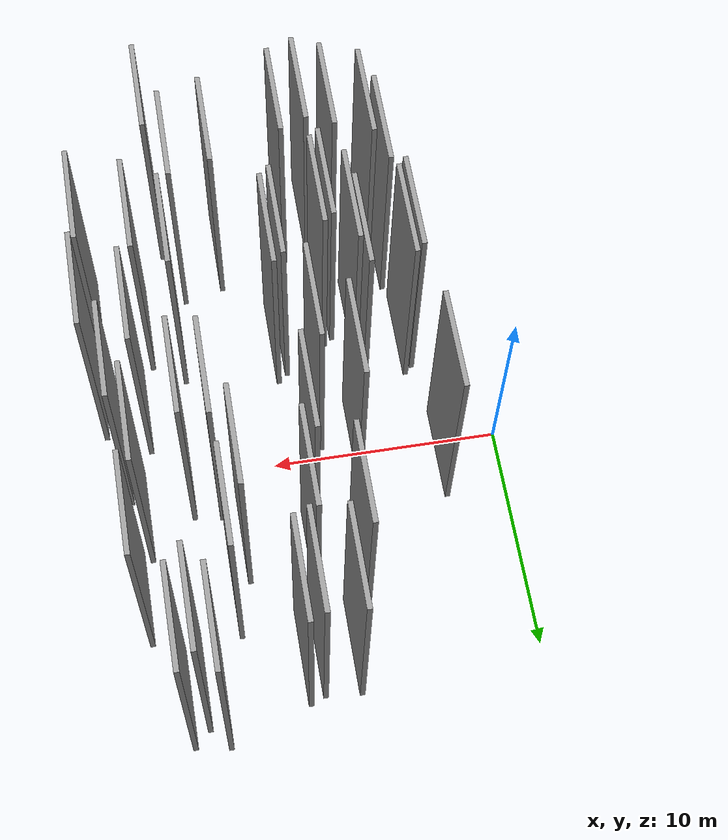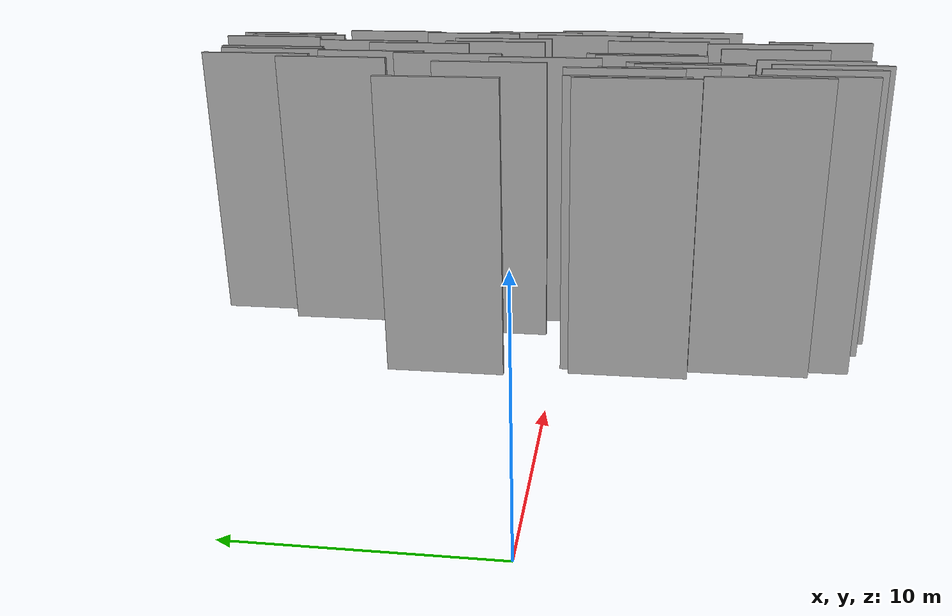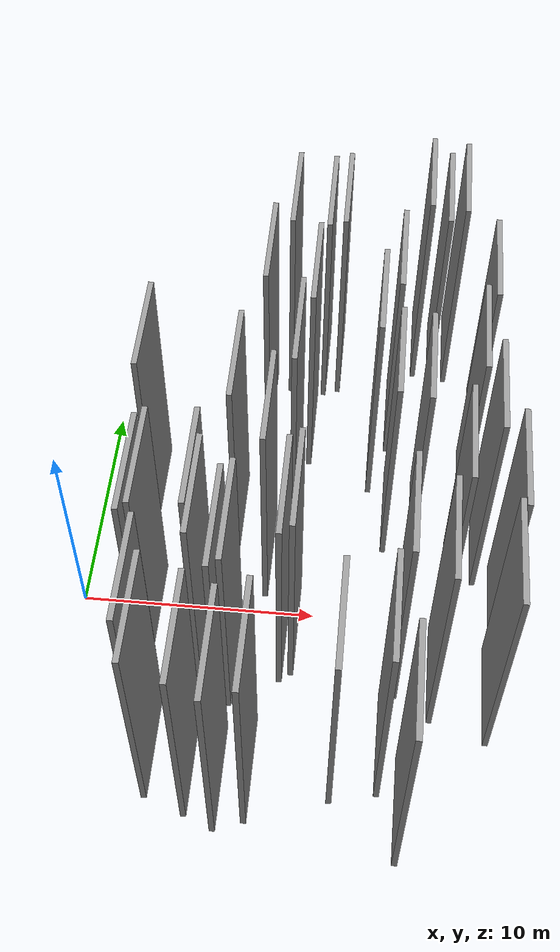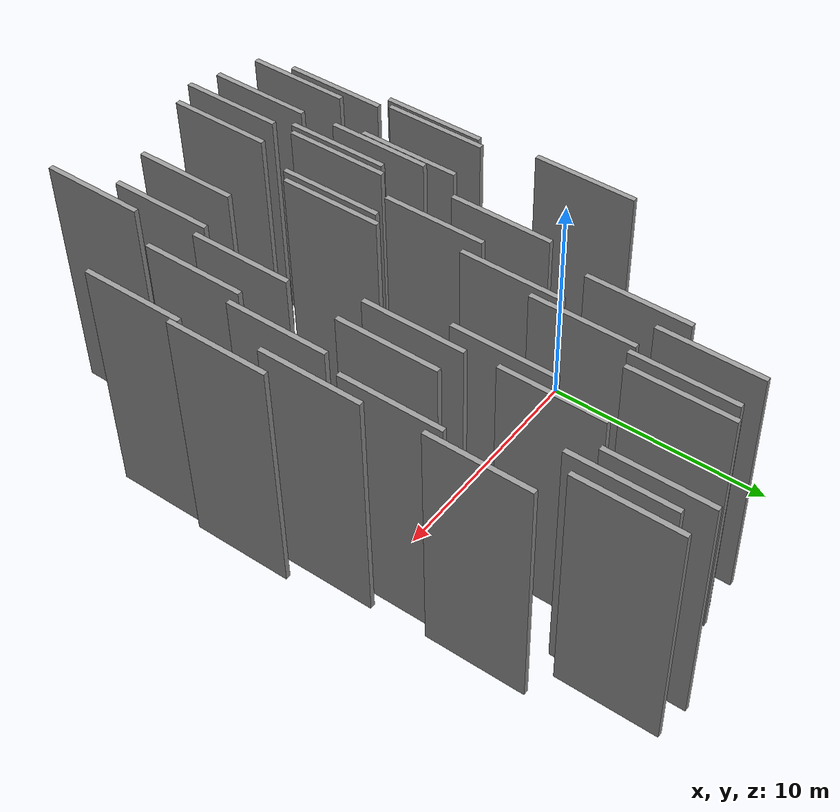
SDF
<sdf version="1.6">
 <world name="default">
  <scene>
   <sky><clouds><speed>12</speed></clouds></sky>
   <ambient>0.4 0.4 0.4 1</ambient>
   <background>0.7 0.7 0.7 1</background>
   <shadows>1</shadows>
  </scene>
  <gravity>0 0 -9.8066</gravity>
  <magnetic_field>6e-06 2.3e-05 -4.2e-05</magnetic_field>
  <physics default="0" name="default_physics" type="ode">
   <ode>
    <solver>
     <type>quick</type>
     <iters>10</iters>
     <sor>1.0</sor>
     <use_dynamic_moi_rescaling>0</use_dynamic_moi_rescaling>
    </solver>
    <constraints>
     <cfm>0</cfm>
     <erp>0.2</erp>
     <contact_max_correcting_vel>100</contact_max_correcting_vel>
     <contact_surface_layer>0.001</contact_surface_layer>
    </constraints>
   </ode>
   <max_step_size>0.004</max_step_size>
   <real_time_factor>1</real_time_factor>
   <real_time_update_rate>250</real_time_update_rate>
  </physics>
  <light name="sun" type="directional">
   <pose>0 0 10 0 0 0</pose>
   <diffuse>0.8 0.8 0.8 1</diffuse>
   <specular>0.2 0.2 0.2 1</specular>
   <attenuation>
    <range>1000</range>
    <constant>0.9</constant>
    <linear>0.01</linear>
    <quadratic>0.001</quadratic>
   </attenuation>
   <direction>-0.5 0.1 -0.9</direction>
  </light>
  <model name="grey_wall_1">
   <static>1</static>
   <pose>13.7882 2.1451 5.0 0.000000 0.000000 1.570796</pose>
   <link name="link">
    <pose>0 0 5.00 0 0 0</pose>
    <collision name="collision"><geometry><box><size>4.00 0.2 10.00</size></box></geometry></collision>
    <visual name="visual">
     <cast_shadows>0</cast_shadows>
     <geometry><box><size>4.00 0.2 10.00</size></box></geometry>
     <material>
      <script>
       <uri>model://grey_wall/materials/scripts</uri>
       <uri>model://grey_wall/materials/textures</uri>
       <name>vrc/grey_wall</name>
      </script>
     </material>
    </visual>
   </link>
  </model>
  <model name="grey_wall_2">
   <static>1</static>
   <pose>15.2211 -1.1042 5.0 0.000000 0.000000 1.570796</pose>
   <link name="link">
    <pose>0 0 5.00 0 0 0</pose>
    <collision name="collision"><geometry><box><size>4.00 0.2 10.00</size></box></geometry></collision>
    <visual name="visual">
     <cast_shadows>0</cast_shadows>
     <geometry><box><size>4.00 0.2 10.00</size></box></geometry>
     <material>
      <script>
       <uri>model://grey_wall/materials/scripts</uri>
       <uri>model://grey_wall/materials/textures</uri>
       <name>vrc/grey_wall</name>
      </script>
     </material>
    </visual>
   </link>
  </model>
  <model name="grey_wall_3">
   <static>1</static>
   <pose>16.7750 -5.7609 5.0 0.000000 0.000000 1.570796</pose>
   <link name="link">
    <pose>0 0 5.00 0 0 0</pose>
    <collision name="collision"><geometry><box><size>4.00 0.2 10.00</size></box></geometry></collision>
    <visual name="visual">
     <cast_shadows>0</cast_shadows>
     <geometry><box><size>4.00 0.2 10.00</size></box></geometry>
     <material>
      <script>
       <uri>model://grey_wall/materials/scripts</uri>
       <uri>model://grey_wall/materials/textures</uri>
       <name>vrc/grey_wall</name>
      </script>
     </material>
    </visual>
   </link>
  </model>
  <model name="grey_wall_4">
   <static>1</static>
   <pose>12.6694 2.3219 5.0 0.000000 0.000000 1.570796</pose>
   <link name="link">
    <pose>0 0 5.00 0 0 0</pose>
    <collision name="collision"><geometry><box><size>4.00 0.2 10.00</size></box></geometry></collision>
    <visual name="visual">
     <cast_shadows>0</cast_shadows>
     <geometry><box><size>4.00 0.2 10.00</size></box></geometry>
     <material>
      <script>
       <uri>model://grey_wall/materials/scripts</uri>
       <uri>model://grey_wall/materials/textures</uri>
       <name>vrc/grey_wall</name>
      </script>
     </material>
    </visual>
   </link>
  </model>
  <model name="grey_wall_5">
   <static>1</static>
   <pose>6.9106 -5.2990 5.0 0.000000 0.000000 1.570796</pose>
   <link name="link">
    <pose>0 0 5.00 0 0 0</pose>
    <collision name="collision"><geometry><box><size>4.00 0.2 10.00</size></box></geometry></collision>
    <visual name="visual">
     <cast_shadows>0</cast_shadows>
     <geometry><box><size>4.00 0.2 10.00</size></box></geometry>
     <material>
      <script>
       <uri>model://grey_wall/materials/scripts</uri>
       <uri>model://grey_wall/materials/textures</uri>
       <name>vrc/grey_wall</name>
      </script>
     </material>
    </visual>
   </link>
  </model>
  <model name="grey_wall_6">
   <static>1</static>
   <pose>12.5727 7.4707 5.0 0.000000 0.000000 1.570796</pose>
   <link name="link">
    <pose>0 0 5.00 0 0 0</pose>
    <collision name="collision"><geometry><box><size>4.00 0.2 10.00</size></box></geometry></collision>
    <visual name="visual">
     <cast_shadows>0</cast_shadows>
     <geometry><box><size>4.00 0.2 10.00</size></box></geometry>
     <material>
      <script>
       <uri>model://grey_wall/materials/scripts</uri>
       <uri>model://grey_wall/materials/textures</uri>
       <name>vrc/grey_wall</name>
      </script>
     </material>
    </visual>
   </link>
  </model>
  <model name="grey_wall_7">
   <static>1</static>
   <pose>4.0674 -3.1351 5.0 0.000000 0.000000 1.570796</pose>
   <link name="link">
    <pose>0 0 5.00 0 0 0</pose>
    <collision name="collision"><geometry><box><size>4.00 0.2 10.00</size></box></geometry></collision>
    <visual name="visual">
     <cast_shadows>0</cast_shadows>
     <geometry><box><size>4.00 0.2 10.00</size></box></geometry>
     <material>
      <script>
       <uri>model://grey_wall/materials/scripts</uri>
       <uri>model://grey_wall/materials/textures</uri>
       <name>vrc/grey_wall</name>
      </script>
     </material>
    </visual>
   </link>
  </model>
  <model name="grey_wall_8">
   <static>1</static>
   <pose>14.2873 10.9999 5.0 0.000000 0.000000 1.570796</pose>
   <link name="link">
    <pose>0 0 5.00 0 0 0</pose>
    <collision name="collision"><geometry><box><size>4.00 0.2 10.00</size></box></geometry></collision>
    <visual name="visual">
     <cast_shadows>0</cast_shadows>
     <geometry><box><size>4.00 0.2 10.00</size></box></geometry>
     <material>
      <script>
       <uri>model://grey_wall/materials/scripts</uri>
       <uri>model://grey_wall/materials/textures</uri>
       <name>vrc/grey_wall</name>
      </script>
     </material>
    </visual>
   </link>
  </model>
  <model name="grey_wall_9">
   <static>1</static>
   <pose>9.0641 -3.8773 5.0 0.000000 0.000000 1.570796</pose>
   <link name="link">
    <pose>0 0 5.00 0 0 0</pose>
    <collision name="collision"><geometry><box><size>4.00 0.2 10.00</size></box></geometry></collision>
    <visual name="visual">
     <cast_shadows>0</cast_shadows>
     <geometry><box><size>4.00 0.2 10.00</size></box></geometry>
     <material>
      <script>
       <uri>model://grey_wall/materials/scripts</uri>
       <uri>model://grey_wall/materials/textures</uri>
       <name>vrc/grey_wall</name>
      </script>
     </material>
    </visual>
   </link>
  </model>
  <model name="grey_wall_10">
   <static>1</static>
   <pose>9.3653 6.4794 5.0 0.000000 0.000000 1.570796</pose>
   <link name="link">
    <pose>0 0 5.00 0 0 0</pose>
    <collision name="collision"><geometry><box><size>4.00 0.2 10.00</size></box></geometry></collision>
    <visual name="visual">
     <cast_shadows>0</cast_shadows>
     <geometry><box><size>4.00 0.2 10.00</size></box></geometry>
     <material>
      <script>
       <uri>model://grey_wall/materials/scripts</uri>
       <uri>model://grey_wall/materials/textures</uri>
       <name>vrc/grey_wall</name>
      </script>
     </material>
    </visual>
   </link>
  </model>
  <model name="grey_wall_11">
   <static>1</static>
   <pose>13.5798 11.8175 5.0 0.000000 0.000000 1.570796</pose>
   <link name="link">
    <pose>0 0 5.00 0 0 0</pose>
    <collision name="collision"><geometry><box><size>4.00 0.2 10.00</size></box></geometry></collision>
    <visual name="visual">
     <cast_shadows>0</cast_shadows>
     <geometry><box><size>4.00 0.2 10.00</size></box></geometry>
     <material>
      <script>
       <uri>model://grey_wall/materials/scripts</uri>
       <uri>model://grey_wall/materials/textures</uri>
       <name>vrc/grey_wall</name>
      </script>
     </material>
    </visual>
   </link>
  </model>
  <model name="grey_wall_12">
   <static>1</static>
   <pose>5.8430 -2.9900 5.0 0.000000 0.000000 1.570796</pose>
   <link name="link">
    <pose>0 0 5.00 0 0 0</pose>
    <collision name="collision"><geometry><box><size>4.00 0.2 10.00</size></box></geometry></collision>
    <visual name="visual">
     <cast_shadows>0</cast_shadows>
     <geometry><box><size>4.00 0.2 10.00</size></box></geometry>
     <material>
      <script>
       <uri>model://grey_wall/materials/scripts</uri>
       <uri>model://grey_wall/materials/textures</uri>
       <name>vrc/grey_wall</name>
      </script>
     </material>
    </visual>
   </link>
  </model>
  <model name="grey_wall_13">
   <static>1</static>
   <pose>12.9214 -8.0760 5.0 0.000000 0.000000 1.570796</pose>
   <link name="link">
    <pose>0 0 5.00 0 0 0</pose>
    <collision name="collision"><geometry><box><size>4.00 0.2 10.00</size></box></geometry></collision>
    <visual name="visual">
     <cast_shadows>0</cast_shadows>
     <geometry><box><size>4.00 0.2 10.00</size></box></geometry>
     <material>
      <script>
       <uri>model://grey_wall/materials/scripts</uri>
       <uri>model://grey_wall/materials/textures</uri>
       <name>vrc/grey_wall</name>
      </script>
     </material>
    </visual>
   </link>
  </model>
  <model name="grey_wall_14">
   <static>1</static>
   <pose>7.5355 7.4163 5.0 0.000000 0.000000 1.570796</pose>
   <link name="link">
    <pose>0 0 5.00 0 0 0</pose>
    <collision name="collision"><geometry><box><size>4.00 0.2 10.00</size></box></geometry></collision>
    <visual name="visual">
     <cast_shadows>0</cast_shadows>
     <geometry><box><size>4.00 0.2 10.00</size></box></geometry>
     <material>
      <script>
       <uri>model://grey_wall/materials/scripts</uri>
       <uri>model://grey_wall/materials/textures</uri>
       <name>vrc/grey_wall</name>
      </script>
     </material>
    </visual>
   </link>
  </model>
  <model name="grey_wall_15">
   <static>1</static>
   <pose>6.0654 -4.1187 5.0 0.000000 0.000000 1.570796</pose>
   <link name="link">
    <pose>0 0 5.00 0 0 0</pose>
    <collision name="collision"><geometry><box><size>4.00 0.2 10.00</size></box></geometry></collision>
    <visual name="visual">
     <cast_shadows>0</cast_shadows>
     <geometry><box><size>4.00 0.2 10.00</size></box></geometry>
     <material>
      <script>
       <uri>model://grey_wall/materials/scripts</uri>
       <uri>model://grey_wall/materials/textures</uri>
       <name>vrc/grey_wall</name>
      </script>
     </material>
    </visual>
   </link>
  </model>
  <model name="grey_wall_16">
   <static>1</static>
   <pose>9.4680 -3.5441 5.0 0.000000 0.000000 1.570796</pose>
   <link name="link">
    <pose>0 0 5.00 0 0 0</pose>
    <collision name="collision"><geometry><box><size>4.00 0.2 10.00</size></box></geometry></collision>
    <visual name="visual">
     <cast_shadows>0</cast_shadows>
     <geometry><box><size>4.00 0.2 10.00</size></box></geometry>
     <material>
      <script>
       <uri>model://grey_wall/materials/scripts</uri>
       <uri>model://grey_wall/materials/textures</uri>
       <name>vrc/grey_wall</name>
      </script>
     </material>
    </visual>
   </link>
  </model>
  <model name="grey_wall_17">
   <static>1</static>
   <pose>6.8388 1.6233 5.0 0.000000 0.000000 1.570796</pose>
   <link name="link">
    <pose>0 0 5.00 0 0 0</pose>
    <collision name="collision"><geometry><box><size>4.00 0.2 10.00</size></box></geometry></collision>
    <visual name="visual">
     <cast_shadows>0</cast_shadows>
     <geometry><box><size>4.00 0.2 10.00</size></box></geometry>
     <material>
      <script>
       <uri>model://grey_wall/materials/scripts</uri>
       <uri>model://grey_wall/materials/textures</uri>
       <name>vrc/grey_wall</name>
      </script>
     </material>
    </visual>
   </link>
  </model>
  <model name="grey_wall_18">
   <static>1</static>
   <pose>3.3852 2.7292 5.0 0.000000 0.000000 1.570796</pose>
   <link name="link">
    <pose>0 0 5.00 0 0 0</pose>
    <collision name="collision"><geometry><box><size>4.00 0.2 10.00</size></box></geometry></collision>
    <visual name="visual">
     <cast_shadows>0</cast_shadows>
     <geometry><box><size>4.00 0.2 10.00</size></box></geometry>
     <material>
      <script>
       <uri>model://grey_wall/materials/scripts</uri>
       <uri>model://grey_wall/materials/textures</uri>
       <name>vrc/grey_wall</name>
      </script>
     </material>
    </visual>
   </link>
  </model>
  <model name="grey_wall_19">
   <static>1</static>
   <pose>8.9306 3.4871 5.0 0.000000 0.000000 1.570796</pose>
   <link name="link">
    <pose>0 0 5.00 0 0 0</pose>
    <collision name="collision"><geometry><box><size>4.00 0.2 10.00</size></box></geometry></collision>
    <visual name="visual">
     <cast_shadows>0</cast_shadows>
     <geometry><box><size>4.00 0.2 10.00</size></box></geometry>
     <material>
      <script>
       <uri>model://grey_wall/materials/scripts</uri>
       <uri>model://grey_wall/materials/textures</uri>
       <name>vrc/grey_wall</name>
      </script>
     </material>
    </visual>
   </link>
  </model>
  <model name="grey_wall_20">
   <static>1</static>
   <pose>7.2857 -5.0212 5.0 0.000000 0.000000 1.570796</pose>
   <link name="link">
    <pose>0 0 5.00 0 0 0</pose>
    <collision name="collision"><geometry><box><size>4.00 0.2 10.00</size></box></geometry></collision>
    <visual name="visual">
     <cast_shadows>0</cast_shadows>
     <geometry><box><size>4.00 0.2 10.00</size></box></geometry>
     <material>
      <script>
       <uri>model://grey_wall/materials/scripts</uri>
       <uri>model://grey_wall/materials/textures</uri>
       <name>vrc/grey_wall</name>
      </script>
     </material>
    </visual>
   </link>
  </model>
  <model name="grey_wall_21">
   <static>1</static>
   <pose>4.7145 -8.8698 5.0 0.000000 0.000000 1.570796</pose>
   <link name="link">
    <pose>0 0 5.00 0 0 0</pose>
    <collision name="collision"><geometry><box><size>4.00 0.2 10.00</size></box></geometry></collision>
    <visual name="visual">
     <cast_shadows>0</cast_shadows>
     <geometry><box><size>4.00 0.2 10.00</size></box></geometry>
     <material>
      <script>
       <uri>model://grey_wall/materials/scripts</uri>
       <uri>model://grey_wall/materials/textures</uri>
       <name>vrc/grey_wall</name>
      </script>
     </material>
    </visual>
   </link>
  </model>
  <model name="grey_wall_22">
   <static>1</static>
   <pose>6.2030 -9.4338 5.0 0.000000 0.000000 1.570796</pose>
   <link name="link">
    <pose>0 0 5.00 0 0 0</pose>
    <collision name="collision"><geometry><box><size>4.00 0.2 10.00</size></box></geometry></collision>
    <visual name="visual">
     <cast_shadows>0</cast_shadows>
     <geometry><box><size>4.00 0.2 10.00</size></box></geometry>
     <material>
      <script>
       <uri>model://grey_wall/materials/scripts</uri>
       <uri>model://grey_wall/materials/textures</uri>
       <name>vrc/grey_wall</name>
      </script>
     </material>
    </visual>
   </link>
  </model>
  <model name="grey_wall_23">
   <static>1</static>
   <pose>4.3025 -7.4743 5.0 0.000000 0.000000 1.570796</pose>
   <link name="link">
    <pose>0 0 5.00 0 0 0</pose>
    <collision name="collision"><geometry><box><size>4.00 0.2 10.00</size></box></geometry></collision>
    <visual name="visual">
     <cast_shadows>0</cast_shadows>
     <geometry><box><size>4.00 0.2 10.00</size></box></geometry>
     <material>
      <script>
       <uri>model://grey_wall/materials/scripts</uri>
       <uri>model://grey_wall/materials/textures</uri>
       <name>vrc/grey_wall</name>
      </script>
     </material>
    </visual>
   </link>
  </model>
  <model name="grey_wall_24">
   <static>1</static>
   <pose>10.2997 10.6036 5.0 0.000000 0.000000 1.570796</pose>
   <link name="link">
    <pose>0 0 5.00 0 0 0</pose>
    <collision name="collision"><geometry><box><size>4.00 0.2 10.00</size></box></geometry></collision>
    <visual name="visual">
     <cast_shadows>0</cast_shadows>
     <geometry><box><size>4.00 0.2 10.00</size></box></geometry>
     <material>
      <script>
       <uri>model://grey_wall/materials/scripts</uri>
       <uri>model://grey_wall/materials/textures</uri>
       <name>vrc/grey_wall</name>
      </script>
     </material>
    </visual>
   </link>
  </model>
  <model name="grey_wall_25">
   <static>1</static>
   <pose>11.9250 5.2454 5.0 0.000000 0.000000 1.570796</pose>
   <link name="link">
    <pose>0 0 5.00 0 0 0</pose>
    <collision name="collision"><geometry><box><size>4.00 0.2 10.00</size></box></geometry></collision>
    <visual name="visual">
     <cast_shadows>0</cast_shadows>
     <geometry><box><size>4.00 0.2 10.00</size></box></geometry>
     <material>
      <script>
       <uri>model://grey_wall/materials/scripts</uri>
       <uri>model://grey_wall/materials/textures</uri>
       <name>vrc/grey_wall</name>
      </script>
     </material>
    </visual>
   </link>
  </model>
  <model name="grey_wall_26">
   <static>1</static>
   <pose>16.1038 7.2511 5.0 0.000000 0.000000 1.570796</pose>
   <link name="link">
    <pose>0 0 5.00 0 0 0</pose>
    <collision name="collision"><geometry><box><size>4.00 0.2 10.00</size></box></geometry></collision>
    <visual name="visual">
     <cast_shadows>0</cast_shadows>
     <geometry><box><size>4.00 0.2 10.00</size></box></geometry>
     <material>
      <script>
       <uri>model://grey_wall/materials/scripts</uri>
       <uri>model://grey_wall/materials/textures</uri>
       <name>vrc/grey_wall</name>
      </script>
     </material>
    </visual>
   </link>
  </model>
  <model name="grey_wall_27">
   <static>1</static>
   <pose>13.6629 -10.5179 5.0 0.000000 0.000000 1.570796</pose>
   <link name="link">
    <pose>0 0 5.00 0 0 0</pose>
    <collision name="collision"><geometry><box><size>4.00 0.2 10.00</size></box></geometry></collision>
    <visual name="visual">
     <cast_shadows>0</cast_shadows>
     <geometry><box><size>4.00 0.2 10.00</size></box></geometry>
     <material>
      <script>
       <uri>model://grey_wall/materials/scripts</uri>
       <uri>model://grey_wall/materials/textures</uri>
       <name>vrc/grey_wall</name>
      </script>
     </material>
    </visual>
   </link>
  </model>
  <model name="grey_wall_28">
   <static>1</static>
   <pose>15.6932 3.7351 5.0 0.000000 0.000000 1.570796</pose>
   <link name="link">
    <pose>0 0 5.00 0 0 0</pose>
    <collision name="collision"><geometry><box><size>4.00 0.2 10.00</size></box></geometry></collision>
    <visual name="visual">
     <cast_shadows>0</cast_shadows>
     <geometry><box><size>4.00 0.2 10.00</size></box></geometry>
     <material>
      <script>
       <uri>model://grey_wall/materials/scripts</uri>
       <uri>model://grey_wall/materials/textures</uri>
       <name>vrc/grey_wall</name>
      </script>
     </material>
    </visual>
   </link>
  </model>
  <model name="grey_wall_29">
   <static>1</static>
   <pose>16.2713 1.0858 5.0 0.000000 0.000000 1.570796</pose>
   <link name="link">
    <pose>0 0 5.00 0 0 0</pose>
    <collision name="collision"><geometry><box><size>4.00 0.2 10.00</size></box></geometry></collision>
    <visual name="visual">
     <cast_shadows>0</cast_shadows>
     <geometry><box><size>4.00 0.2 10.00</size></box></geometry>
     <material>
      <script>
       <uri>model://grey_wall/materials/scripts</uri>
       <uri>model://grey_wall/materials/textures</uri>
       <name>vrc/grey_wall</name>
      </script>
     </material>
    </visual>
   </link>
  </model>
  <model name="grey_wall_30">
   <static>1</static>
   <pose>7.2745 -9.8756 5.0 0.000000 0.000000 1.570796</pose>
   <link name="link">
    <pose>0 0 5.00 0 0 0</pose>
    <collision name="collision"><geometry><box><size>4.00 0.2 10.00</size></box></geometry></collision>
    <visual name="visual">
     <cast_shadows>0</cast_shadows>
     <geometry><box><size>4.00 0.2 10.00</size></box></geometry>
     <material>
      <script>
       <uri>model://grey_wall/materials/scripts</uri>
       <uri>model://grey_wall/materials/textures</uri>
       <name>vrc/grey_wall</name>
      </script>
     </material>
    </visual>
   </link>
  </model>
  <model name="grey_wall_31">
   <static>1</static>
   <pose>14.9354 11.6142 5.0 0.000000 0.000000 1.570796</pose>
   <link name="link">
    <pose>0 0 5.00 0 0 0</pose>
    <collision name="collision"><geometry><box><size>4.00 0.2 10.00</size></box></geometry></collision>
    <visual name="visual">
     <cast_shadows>0</cast_shadows>
     <geometry><box><size>4.00 0.2 10.00</size></box></geometry>
     <material>
      <script>
       <uri>model://grey_wall/materials/scripts</uri>
       <uri>model://grey_wall/materials/textures</uri>
       <name>vrc/grey_wall</name>
      </script>
     </material>
    </visual>
   </link>
  </model>
  <model name="grey_wall_32">
   <static>1</static>
   <pose>3.7539 -3.4288 5.0 0.000000 0.000000 1.570796</pose>
   <link name="link">
    <pose>0 0 5.00 0 0 0</pose>
    <collision name="collision"><geometry><box><size>4.00 0.2 10.00</size></box></geometry></collision>
    <visual name="visual">
     <cast_shadows>0</cast_shadows>
     <geometry><box><size>4.00 0.2 10.00</size></box></geometry>
     <material>
      <script>
       <uri>model://grey_wall/materials/scripts</uri>
       <uri>model://grey_wall/materials/textures</uri>
       <name>vrc/grey_wall</name>
      </script>
     </material>
    </visual>
   </link>
  </model>
  <model name="grey_wall_33">
   <static>1</static>
   <pose>16.9869 -2.0396 5.0 0.000000 0.000000 1.570796</pose>
   <link name="link">
    <pose>0 0 5.00 0 0 0</pose>
    <collision name="collision"><geometry><box><size>4.00 0.2 10.00</size></box></geometry></collision>
    <visual name="visual">
     <cast_shadows>0</cast_shadows>
     <geometry><box><size>4.00 0.2 10.00</size></box></geometry>
     <material>
      <script>
       <uri>model://grey_wall/materials/scripts</uri>
       <uri>model://grey_wall/materials/textures</uri>
       <name>vrc/grey_wall</name>
      </script>
     </material>
    </visual>
   </link>
  </model>
  <model name="grey_wall_34">
   <static>1</static>
   <pose>8.3291 -9.4901 5.0 0.000000 0.000000 1.570796</pose>
   <link name="link">
    <pose>0 0 5.00 0 0 0</pose>
    <collision name="collision"><geometry><box><size>4.00 0.2 10.00</size></box></geometry></collision>
    <visual name="visual">
     <cast_shadows>0</cast_shadows>
     <geometry><box><size>4.00 0.2 10.00</size></box></geometry>
     <material>
      <script>
       <uri>model://grey_wall/materials/scripts</uri>
       <uri>model://grey_wall/materials/textures</uri>
       <name>vrc/grey_wall</name>
      </script>
     </material>
    </visual>
   </link>
  </model>
  <model name="grey_wall_35">
   <static>1</static>
   <pose>11.2546 -8.4883 5.0 0.000000 0.000000 1.570796</pose>
   <link name="link">
    <pose>0 0 5.00 0 0 0</pose>
    <collision name="collision"><geometry><box><size>4.00 0.2 10.00</size></box></geometry></collision>
    <visual name="visual">
     <cast_shadows>0</cast_shadows>
     <geometry><box><size>4.00 0.2 10.00</size></box></geometry>
     <material>
      <script>
       <uri>model://grey_wall/materials/scripts</uri>
       <uri>model://grey_wall/materials/textures</uri>
       <name>vrc/grey_wall</name>
      </script>
     </material>
    </visual>
   </link>
  </model>
  <model name="grey_wall_36">
   <static>1</static>
   <pose>8.2721 10.4725 5.0 0.000000 0.000000 1.570796</pose>
   <link name="link">
    <pose>0 0 5.00 0 0 0</pose>
    <collision name="collision"><geometry><box><size>4.00 0.2 10.00</size></box></geometry></collision>
    <visual name="visual">
     <cast_shadows>0</cast_shadows>
     <geometry><box><size>4.00 0.2 10.00</size></box></geometry>
     <material>
      <script>
       <uri>model://grey_wall/materials/scripts</uri>
       <uri>model://grey_wall/materials/textures</uri>
       <name>vrc/grey_wall</name>
      </script>
     </material>
    </visual>
   </link>
  </model>
  <model name="grey_wall_37">
   <static>1</static>
   <pose>13.3897 -4.1607 5.0 0.000000 0.000000 1.570796</pose>
   <link name="link">
    <pose>0 0 5.00 0 0 0</pose>
    <collision name="collision"><geometry><box><size>4.00 0.2 10.00</size></box></geometry></collision>
    <visual name="visual">
     <cast_shadows>0</cast_shadows>
     <geometry><box><size>4.00 0.2 10.00</size></box></geometry>
     <material>
      <script>
       <uri>model://grey_wall/materials/scripts</uri>
       <uri>model://grey_wall/materials/textures</uri>
       <name>vrc/grey_wall</name>
      </script>
     </material>
    </visual>
   </link>
  </model>
  <model name="grey_wall_38">
   <static>1</static>
   <pose>8.1794 -0.1729 5.0 0.000000 0.000000 1.570796</pose>
   <link name="link">
    <pose>0 0 5.00 0 0 0</pose>
    <collision name="collision"><geometry><box><size>4.00 0.2 10.00</size></box></geometry></collision>
    <visual name="visual">
     <cast_shadows>0</cast_shadows>
     <geometry><box><size>4.00 0.2 10.00</size></box></geometry>
     <material>
      <script>
       <uri>model://grey_wall/materials/scripts</uri>
       <uri>model://grey_wall/materials/textures</uri>
       <name>vrc/grey_wall</name>
      </script>
     </material>
    </visual>
   </link>
  </model>
  <model name="grey_wall_39">
   <static>1</static>
   <pose>9.6936 10.3661 5.0 0.000000 0.000000 1.570796</pose>
   <link name="link">
    <pose>0 0 5.00 0 0 0</pose>
    <collision name="collision"><geometry><box><size>4.00 0.2 10.00</size></box></geometry></collision>
    <visual name="visual">
     <cast_shadows>0</cast_shadows>
     <geometry><box><size>4.00 0.2 10.00</size></box></geometry>
     <material>
      <script>
       <uri>model://grey_wall/materials/scripts</uri>
       <uri>model://grey_wall/materials/textures</uri>
       <name>vrc/grey_wall</name>
      </script>
     </material>
    </visual>
   </link>
  </model>
  <model name="grey_wall_40">
   <static>1</static>
   <pose>14.7072 -5.0406 5.0 0.000000 0.000000 1.570796</pose>
   <link name="link">
    <pose>0 0 5.00 0 0 0</pose>
    <collision name="collision"><geometry><box><size>4.00 0.2 10.00</size></box></geometry></collision>
    <visual name="visual">
     <cast_shadows>0</cast_shadows>
     <geometry><box><size>4.00 0.2 10.00</size></box></geometry>
     <material>
      <script>
       <uri>model://grey_wall/materials/scripts</uri>
       <uri>model://grey_wall/materials/textures</uri>
       <name>vrc/grey_wall</name>
      </script>
     </material>
    </visual>
   </link>
  </model>
 </world>
</sdf>
